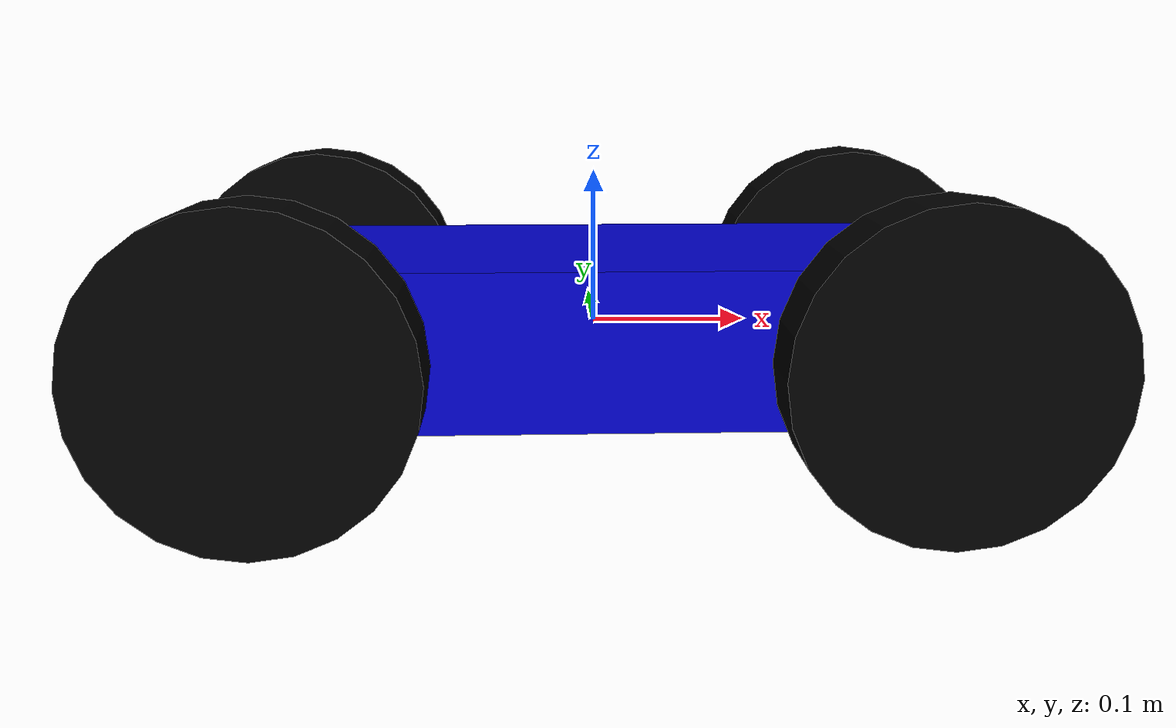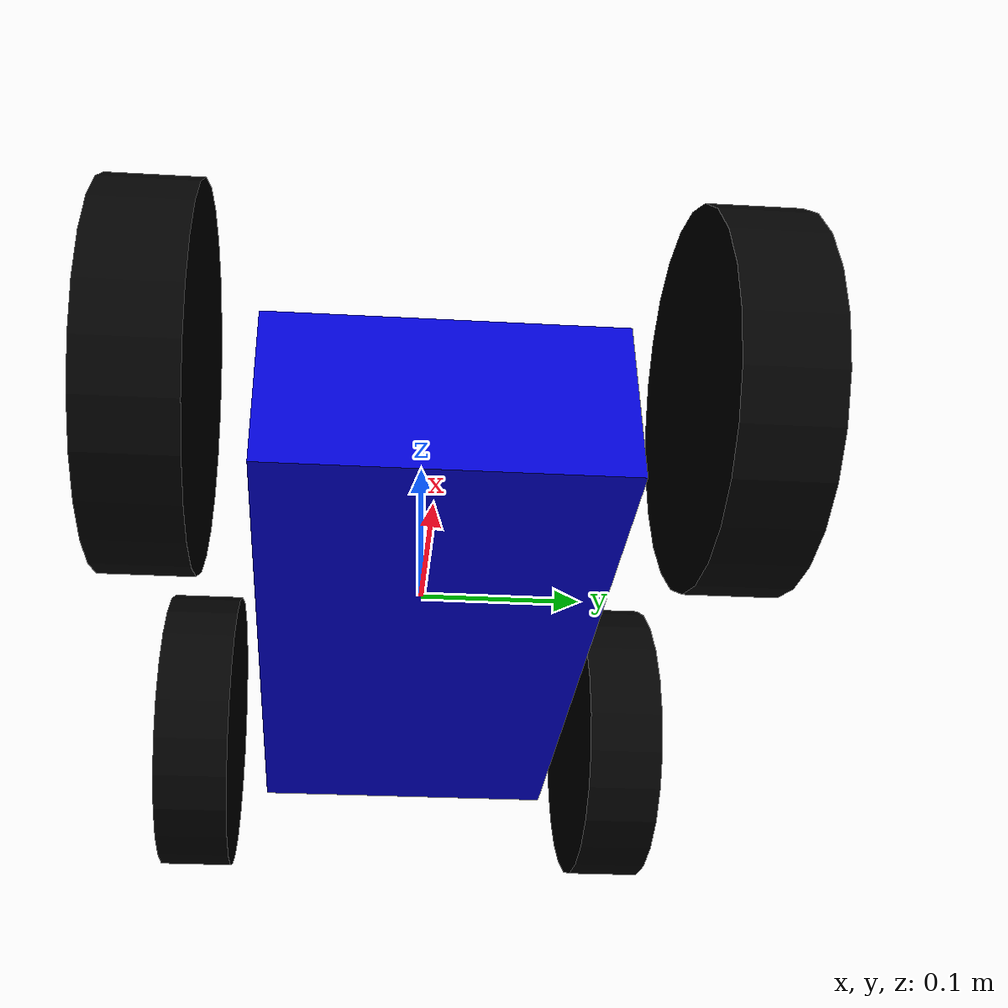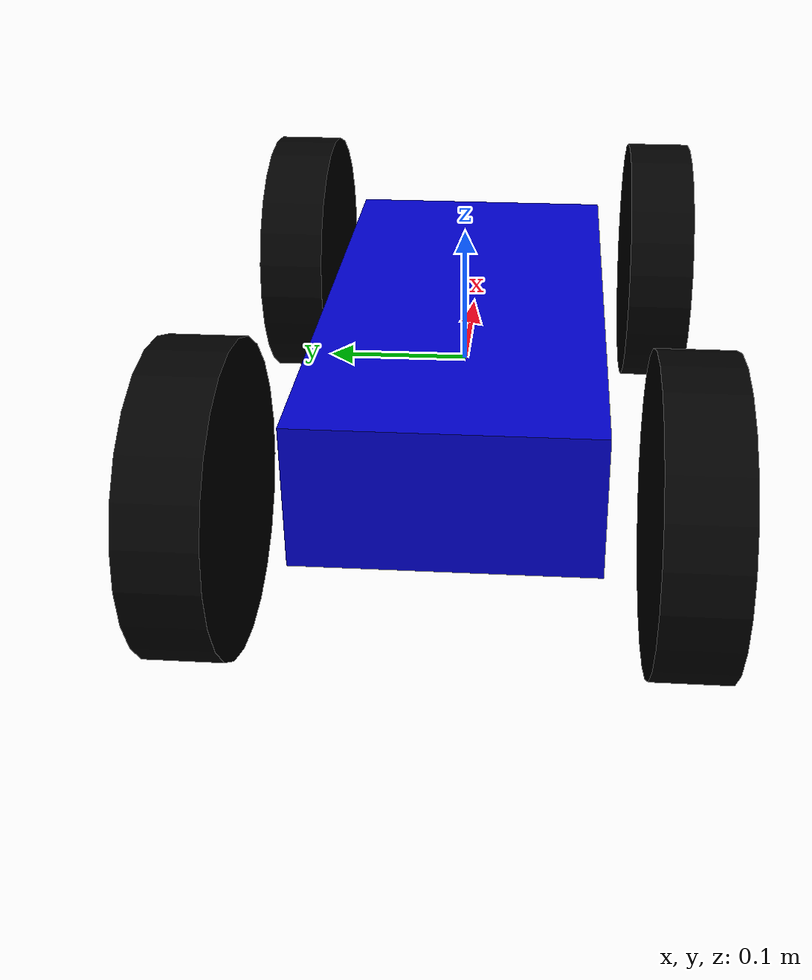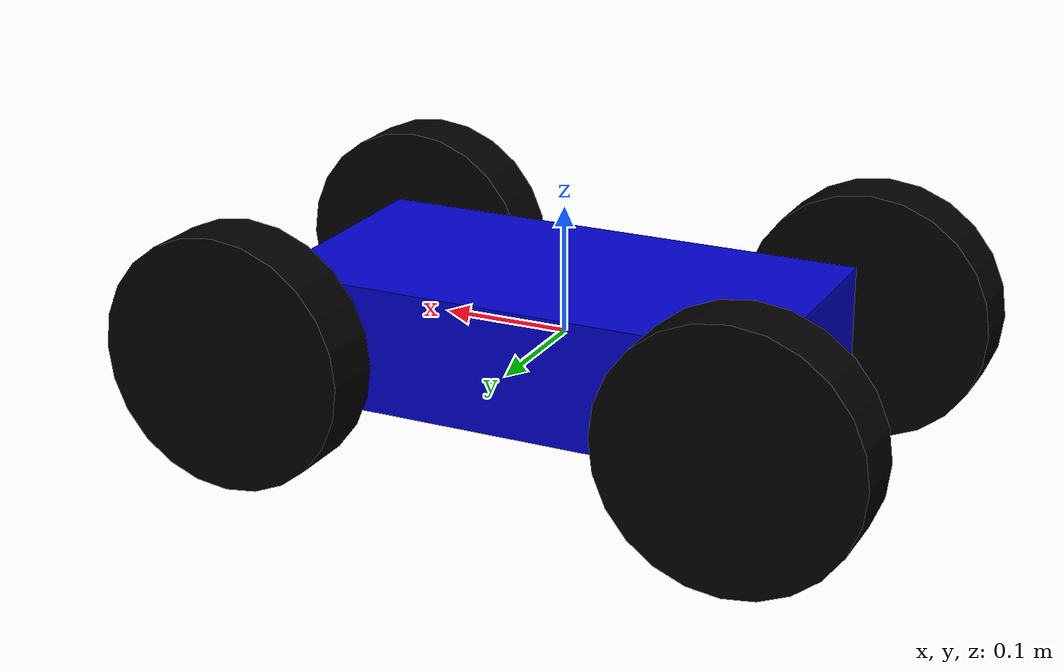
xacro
<?xml version='1.0'?>
<robot name="mogi_bot" xmlns:xacro="http://www.ros.org/wiki/xacro">

  <!-- 材料定义 -->
  <material name="blue">
    <color rgba="0 0 0.8 1"/>
  </material>
  <material name="black">
    <color rgba="0 0 0 1"/>
  </material>
  <material name="gray">
    <color rgba="0.5 0.5 0.5 1"/>
  </material>

  <!-- 核心参数定义（四轮小车适配） -->
  <xacro:property name="base_mass" value="15.0" />
  <xacro:property name="wheel_mass" value="5.0" />
  <xacro:property name="wheel_radius" value="0.1" />
  <xacro:property name="wheel_length" value="0.05" />
  <xacro:property name="wheel_separation" value="0.3" /> <!-- 左右轮间距 -->
  <xacro:property name="wheelbase" value="0.4" />        <!-- 前后轮间距 -->

  <link name="odom">
      <inertial>
        <mass value="0.001"/>
        <inertia ixx="0.001" ixy="0.0" ixz="0.0" iyy="0.001" iyz="0.0" izz="0.001"/>
      </inertial>
    </link>

    <!-- 新增：odom 到 base_footprint 的固定关节（里程计坐标系关联） -->
    <joint name="odom_joint" type="fixed">
      <origin xyz="0 0 0" rpy="0 0 0" />
      <parent link="odom"/>
      <child link="base_footprint"/>
    </joint>

  <link name="base_footprint">
    <inertial>
      <mass value="0.001"/>
      <inertia ixx="0.001" ixy="0.0" ixz="0.0" iyy="0.001" iyz="0.0" izz="0.001"/>
    </inertial>
  </link>

  <!-- 2. 车身底座（base_link） -->
  <joint name="base_footprint_joint" type="fixed">
    <origin xyz="0 0 0" rpy="0 0 0" />
    <parent link="base_footprint"/>
    <child link="base_link" />
  </joint>

  <link name='base_link'>
    <inertial>
      <mass value="${base_mass}"/>
      <origin xyz="0.0 0 0" rpy="0 0 0"/>
      <inertia
          ixx="0.0625" ixy="0" ixz="0"
          iyy="0.2125" iyz="0"
          izz="0.25"
      />
    </inertial>

    <collision name='collision'>
      <origin xyz="0 0 0" rpy="0 0 0"/>
      <geometry>
        <box size=".4 .2 .1"/>
      </geometry>
    </collision>

    <visual name='base_link_visual'>
      <origin xyz="0 0 0" rpy="0 0 0"/>
      <geometry>
        <box size=".4 .2 .1"/>
      </geometry>
      <material name="blue"/>
    </visual>
  </link>

  <!-- 3. 四轮驱动结构 -->
  <!-- 前轮（左） -->
  <joint type="continuous" name="front_left_wheel_joint">
    <origin xyz="${wheelbase/2} ${wheel_separation/2} 0" rpy="0 0 0"/>
    <child link="front_left_wheel"/>
    <parent link="base_link"/>
    <axis xyz="0 1 0"/>
    <limit effort="100" velocity="10"/>
    <dynamics damping="1.0" friction="1.0"/>
  </joint>

  <link name='front_left_wheel'>
    <inertial>
      <mass value="${wheel_mass}"/>
      <origin xyz="0 0 0" rpy="0 1.5707 1.5707"/>
      <inertia
          ixx="0.014" ixy="0" ixz="0"
          iyy="0.014" iyz="0"
          izz="0.025"
      />
    </inertial>

    <collision name="front_left_wheel_collision">
      <origin xyz="0 0 0" rpy="0 1.5707 1.5707"/>
      <geometry>
        <cylinder radius="${wheel_radius}" length="${wheel_length}"/>
      </geometry>
    </collision>

    <visual name='front_left_wheel_visual'>
      <origin xyz="0 0 0" rpy="0 1.5707 1.5707"/>
      <geometry>
        <cylinder radius="${wheel_radius}" length="${wheel_length}"/>
      </geometry>
      <material name="black"/>
    </visual>
  </link>

  <!-- 前轮（右） -->
  <joint type="continuous" name="front_right_wheel_joint">
    <origin xyz="${wheelbase/2} -${wheel_separation/2} 0" rpy="0 0 0"/>
    <child link="front_right_wheel"/>
    <parent link="base_link"/>
    <axis xyz="0 1 0"/>
    <limit effort="100" velocity="10"/>
    <dynamics damping="1.0" friction="1.0"/>
  </joint>

  <link name='front_right_wheel'>
    <inertial>
      <mass value="${wheel_mass}"/>
      <origin xyz="0 0 0" rpy="0 1.5707 1.5707"/>
      <inertia
          ixx="0.014" ixy="0" ixz="0"
          iyy="0.014" iyz="0"
          izz="0.025"
      />
    </inertial>

    <collision name="front_right_wheel_collision">
      <origin xyz="0 0 0" rpy="0 1.5707 1.5707"/>
      <geometry>
        <cylinder radius="${wheel_radius}" length="${wheel_length}"/>
      </geometry>
    </collision>

    <visual name='front_right_wheel_visual'>
      <origin xyz="0 0 0" rpy="0 1.5707 1.5707"/>
      <geometry>
        <cylinder radius="${wheel_radius}" length="${wheel_length}"/>
      </geometry>
      <material name="black"/>
    </visual>
  </link>

  <!-- 后轮（左） -->
  <joint type="continuous" name="rear_left_wheel_joint">
    <origin xyz="-${wheelbase/2} ${wheel_separation/2} 0" rpy="0 0 0"/>
    <child link="rear_left_wheel"/>
    <parent link="base_link"/>
    <axis xyz="0 1 0"/>
    <limit effort="100" velocity="10"/>
    <dynamics damping="1.0" friction="1.0"/>
  </joint>

  <link name='rear_left_wheel'>
    <inertial>
      <mass value="${wheel_mass}"/>
      <origin xyz="0 0 0" rpy="0 1.5707 1.5707"/>
      <inertia
          ixx="0.014" ixy="0" ixz="0"
          iyy="0.014" iyz="0"
          izz="0.025"
      />
    </inertial>

    <collision name="rear_left_wheel_collision">
      <origin xyz="0 0 0" rpy="0 1.5707 1.5707"/>
      <geometry>
        <cylinder radius="${wheel_radius}" length="${wheel_length}"/>
      </geometry>
    </collision>

    <visual name='rear_left_wheel_visual'>
      <origin xyz="0 0 0" rpy="0 1.5707 1.5707"/>
      <geometry>
        <cylinder radius="${wheel_radius}" length="${wheel_length}"/>
      </geometry>
      <material name="black"/>
    </visual>
  </link>

  <!-- 后轮（右） -->
  <joint type="continuous" name="rear_right_wheel_joint">
    <origin xyz="-${wheelbase/2} -${wheel_separation/2} 0" rpy="0 0 0"/>
    <child link="rear_right_wheel"/>
    <parent link="base_link"/>
    <axis xyz="0 1 0"/>
    <limit effort="100" velocity="10"/>
    <dynamics damping="1.0" friction="1.0"/>
  </joint>

  <link name='rear_right_wheel'>
    <inertial>
      <mass value="${wheel_mass}"/>
      <origin xyz="0 0 0" rpy="0 1.5707 1.5707"/>
      <inertia
          ixx="0.014" ixy="0" ixz="0"
          iyy="0.014" iyz="0"
          izz="0.025"
      />
    </inertial>

    <collision name="rear_right_wheel_collision">
      <origin xyz="0 0 0" rpy="0 1.5707 1.5707"/>
      <geometry>
        <cylinder radius="${wheel_radius}" length="${wheel_length}"/>
      </geometry>
    </collision>

    <visual name='rear_right_wheel_visual'>
      <origin xyz="0 0 0" rpy="0 1.5707 1.5707"/>
      <geometry>
        <cylinder radius="${wheel_radius}" length="${wheel_length}"/>
      </geometry>
      <material name="black"/>
    </visual>
  </link>

  <!-- 4. Gazebo插件配置（无命名空间） -->
  <gazebo>
    <plugin name="gazebo_ros2_control" filename="libgazebo_ros2_control.so">
      <parameters>$(find two_wheeled_cart)/config/controller.yaml</parameters>
      <controller_manager_node_name>controller_manager</controller_manager_node_name>
    </plugin>
  </gazebo>

  <!-- 5. ros2_control配置（四轮差速控制） -->
  <ros2_control name="mogi_hardware_interface" type="system">
    <hardware>
      <plugin>gazebo_ros2_control/GazeboSystem</plugin>
      <param name="robot_param">robot_description</param>
    </hardware>

    <!-- 四个车轮的控制接口 -->
    <joint name="front_left_wheel_joint">
      <command_interface name="velocity"/>
      <state_interface name="position"/>
      <state_interface name="velocity"/>
    </joint>
    <joint name="front_right_wheel_joint">
      <command_interface name="velocity"/>
      <state_interface name="position"/>
      <state_interface name="velocity"/>
    </joint>
    <joint name="rear_left_wheel_joint">
      <command_interface name="velocity"/>
      <state_interface name="position"/>
      <state_interface name="velocity"/>
    </joint>
    <joint name="rear_right_wheel_joint">
      <command_interface name="velocity"/>
      <state_interface name="position"/>
      <state_interface name="velocity"/>
    </joint>
  </ros2_control>

</robot>
